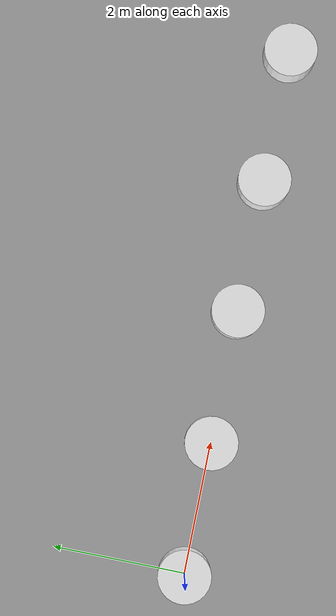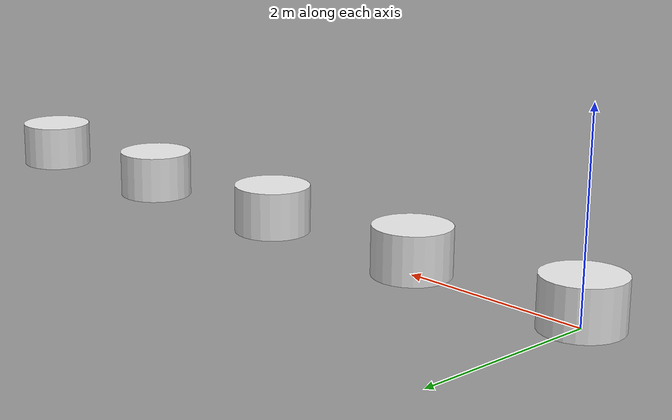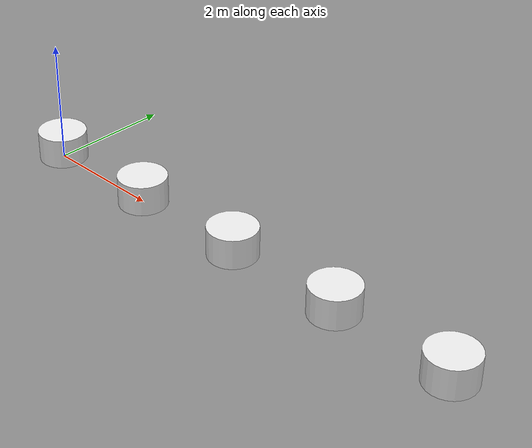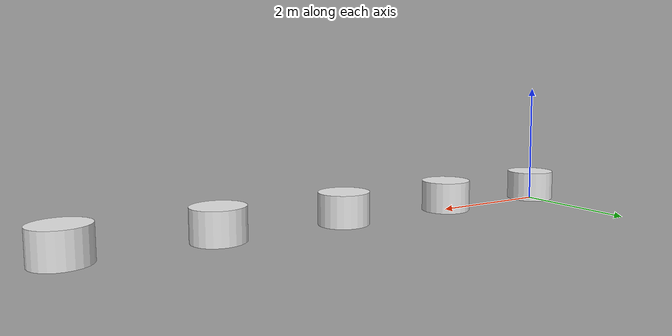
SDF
<sdf version='1.5'>
    <!-- Draw Circle -->
    <model name='ros_symbol'>
      <static>1</static>
      <link name='symbol'>

        <collision name='two_two'>
          <pose>0 0 0.25 0 0 0</pose>
          <geometry>
            <cylinder>
              <radius>0.4</radius>
              <length>0.5</length>
            </cylinder>
          </geometry>
          <max_contacts>10</max_contacts>
          <surface>
            <bounce/>
            <friction>
              <ode/>
            </friction>
            <contact>
              <ode/>
            </contact>
          </surface>
        </collision>

        <visual name='two_two'>
          <pose>0 0 0.25 0 0 0</pose>
          <geometry>
            <cylinder>
              <radius>0.4</radius>
              <length>0.5</length>
            </cylinder>
          </geometry>
          <material>
            <script>
              <uri>file://media/materials/scripts/gazebo.material</uri>
              <name>Gazebo/White</name>
            </script>
          </material>
        </visual>

        <collision name='three'>
          <pose>2 0 0.25 0 0 0</pose>
          <geometry>
            <cylinder>
              <radius>0.4</radius>
              <length>0.5</length>
            </cylinder>
          </geometry>
          <max_contacts>10</max_contacts>
          <surface>
            <bounce/>
            <friction>
              <ode/>
            </friction>
            <contact>
              <ode/>
            </contact>
          </surface>
        </collision>

        <visual name='three'>
          <pose>2 0 0.25 0 0 0</pose>
          <geometry>
            <cylinder>
              <radius>0.4</radius>
              <length>0.5</length>
            </cylinder>
          </geometry>
          <material>
            <script>
              <uri>file://media/materials/scripts/gazebo.material</uri>
              <name>Gazebo/White</name>
            </script>
          </material>
        </visual>

        <collision name='four'>
          <pose>4 0 0.25 0 0 0</pose>
          <geometry>
            <cylinder>
              <radius>0.4</radius>
              <length>0.5</length>
            </cylinder>
          </geometry>
          <max_contacts>10</max_contacts>
          <surface>
            <bounce/>
            <friction>
              <ode/>
            </friction>
            <contact>
              <ode/>
            </contact>
          </surface>
        </collision>

        <visual name='four'>
          <pose>4 0 0.25 0 0 0</pose>
          <geometry>
            <cylinder>
              <radius>0.4</radius>
              <length>0.5</length>
            </cylinder>
          </geometry>
          <material>
            <script>
              <uri>file://media/materials/scripts/gazebo.material</uri>
              <name>Gazebo/White</name>
            </script>
          </material>
        </visual>

        <collision name='five'>
          <pose>6 0 0.25 0 0 0</pose>
          <geometry>
            <cylinder>
              <radius>0.4</radius>
              <length>0.5</length>
            </cylinder>
          </geometry>
          <max_contacts>10</max_contacts>
          <surface>
            <bounce/>
            <friction>
              <ode/>
            </friction>
            <contact>
              <ode/>
            </contact>
          </surface>
        </collision>

        <visual name='five'>
          <pose>6 0 0.25 0 0 0</pose>
          <geometry>
            <cylinder>
              <radius>0.4</radius>
              <length>0.5</length>
            </cylinder>
          </geometry>
          <material>
            <script>
              <uri>file://media/materials/scripts/gazebo.material</uri>
              <name>Gazebo/White</name>
            </script>
          </material>
        </visual>

        <collision name='six'>
          <pose>8 0 0.25 0 0 0</pose>
          <geometry>
            <cylinder>
              <radius>0.4</radius>
              <length>0.5</length>
            </cylinder>
          </geometry>
          <max_contacts>10</max_contacts>
          <surface>
            <bounce/>
            <friction>
              <ode/>
            </friction>
            <contact>
              <ode/>
            </contact>
          </surface>
        </collision>

        <visual name='six'>
          <pose>8 0 0.25 0 0 0</pose>
          <geometry>
            <cylinder>
              <radius>0.4</radius>
              <length>0.5</length>
            </cylinder>
          </geometry>
          <material>
            <script>
              <uri>file://media/materials/scripts/gazebo.material</uri>
              <name>Gazebo/White</name>
            </script>
          </material>
        </visual>

    </link>

  </model>
</sdf>
